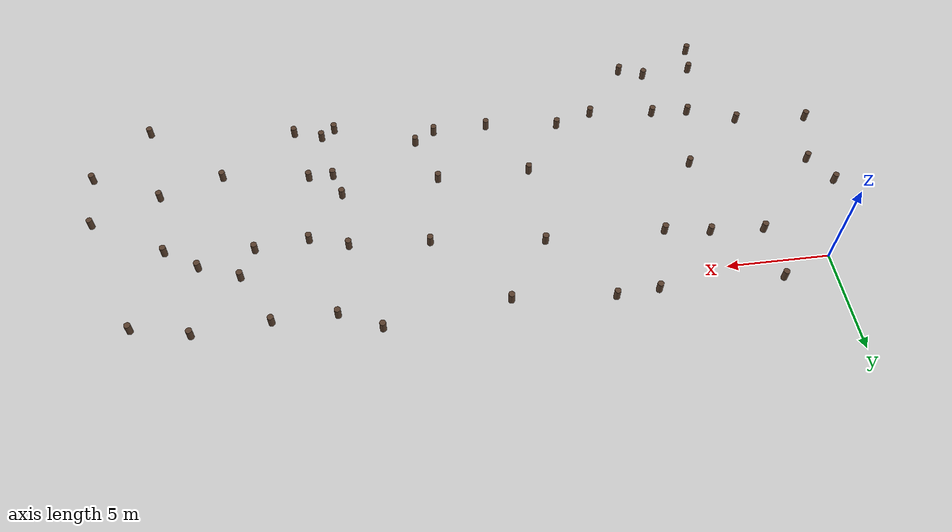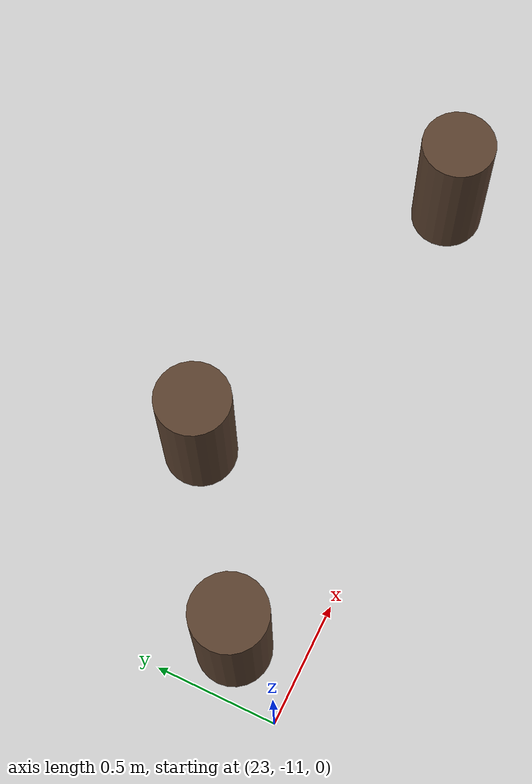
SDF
<?xml version="1.0"?>
<sdf version="1.6">
  <world name="orchard_world">
    <include>
      <uri>model://sun</uri>
    </include>

    <include>
      <uri>model://ground_plane</uri>
    </include>

    <!-- Trees: 49 includes of model://tree_trunk -->
    <include>
      <uri>model://tree_trunk</uri>
      <name>tree_0000</name>
      <pose>3.307497 -14.340033 0 0 0 0</pose>
    </include>
    <include>
      <uri>model://tree_trunk</uri>
      <name>tree_0001</name>
      <pose>7.416506 -13.215061 0 0 0 0</pose>
    </include>
    <include>
      <uri>model://tree_trunk</uri>
      <name>tree_0002</name>
      <pose>3.569192 -12.912752 0 0 0 0</pose>
    </include>
    <include>
      <uri>model://tree_trunk</uri>
      <name>tree_0003</name>
      <pose>6.164020 -12.736640 0 0 0 0</pose>
    </include>
    <include>
      <uri>model://tree_trunk</uri>
      <name>tree_0004</name>
      <pose>32.761314 -11.572879 0 0 0 0</pose>
    </include>
    <include>
      <uri>model://tree_trunk</uri>
      <name>tree_0005</name>
      <pose>23.194054 -10.733418 0 0 0 0</pose>
    </include>
    <include>
      <uri>model://tree_trunk</uri>
      <name>tree_0006</name>
      <pose>25.280037 -10.721928 0 0 0 0</pose>
    </include>
    <include>
      <uri>model://tree_trunk</uri>
      <name>tree_0007</name>
      <pose>9.609021 -10.306000 0 0 0 0</pose>
    </include>
    <include>
      <uri>model://tree_trunk</uri>
      <name>tree_0008</name>
      <pose>23.859732 -10.253096 0 0 0 0</pose>
    </include>
    <include>
      <uri>model://tree_trunk</uri>
      <name>tree_0009</name>
      <pose>15.241858 -10.082329 0 0 0 0</pose>
    </include>
    <include>
      <uri>model://tree_trunk</uri>
      <name>tree_0010</name>
      <pose>18.015316 -9.988838 0 0 0 0</pose>
    </include>
    <include>
      <uri>model://tree_trunk</uri>
      <name>tree_0011</name>
      <pose>6.313122 -9.960390 0 0 0 0</pose>
    </include>
    <include>
      <uri>model://tree_trunk</uri>
      <name>tree_0012</name>
      <pose>4.424278 -9.834929 0 0 0 0</pose>
    </include>
    <include>
      <uri>model://tree_trunk</uri>
      <name>tree_0013</name>
      <pose>11.518867 -9.704505 0 0 0 0</pose>
    </include>
    <include>
      <uri>model://tree_trunk</uri>
      <name>tree_0014</name>
      <pose>19.033037 -9.368340 0 0 0 0</pose>
    </include>
    <include>
      <uri>model://tree_trunk</uri>
      <name>tree_0015</name>
      <pose>2.005642 -8.985166 0 0 0 0</pose>
    </include>
    <include>
      <uri>model://tree_trunk</uri>
      <name>tree_0016</name>
      <pose>35.423580 -8.764959 0 0 0 0</pose>
    </include>
    <include>
      <uri>model://tree_trunk</uri>
      <name>tree_0017</name>
      <pose>-1.692026 -8.703738 0 0 0 0</pose>
    </include>
    <include>
      <uri>model://tree_trunk</uri>
      <name>tree_0018</name>
      <pose>28.919109 -8.180766 0 0 0 0</pose>
    </include>
    <include>
      <uri>model://tree_trunk</uri>
      <name>tree_0019</name>
      <pose>24.585564 -7.663545 0 0 0 0</pose>
    </include>
    <include>
      <uri>model://tree_trunk</uri>
      <name>tree_0020</name>
      <pose>23.372393 -7.648589 0 0 0 0</pose>
    </include>
    <include>
      <uri>model://tree_trunk</uri>
      <name>tree_0021</name>
      <pose>31.989241 -7.239039 0 0 0 0</pose>
    </include>
    <include>
      <uri>model://tree_trunk</uri>
      <name>tree_0022</name>
      <pose>13.462031 -6.831235 0 0 0 0</pose>
    </include>
    <include>
      <uri>model://tree_trunk</uri>
      <name>tree_0023</name>
      <pose>18.098537 -6.820309 0 0 0 0</pose>
    </include>
    <include>
      <uri>model://tree_trunk</uri>
      <name>tree_0024</name>
      <pose>22.966911 -6.359400 0 0 0 0</pose>
    </include>
    <include>
      <uri>model://tree_trunk</uri>
      <name>tree_0025</name>
      <pose>5.214707 -6.300080 0 0 0 0</pose>
    </include>
    <include>
      <uri>model://tree_trunk</uri>
      <name>tree_0026</name>
      <pose>35.213043 -5.924139 0 0 0 0</pose>
    </include>
    <include>
      <uri>model://tree_trunk</uri>
      <name>tree_0027</name>
      <pose>-0.858114 -5.900395 0 0 0 0</pose>
    </include>
    <include>
      <uri>model://tree_trunk</uri>
      <name>tree_0028</name>
      <pose>-1.796048 -4.397140 0 0 0 0</pose>
    </include>
    <include>
      <uri>model://tree_trunk</uri>
      <name>tree_0029</name>
      <pose>31.571064 -3.858552 0 0 0 0</pose>
    </include>
    <include>
      <uri>model://tree_trunk</uri>
      <name>tree_0030</name>
      <pose>24.667372 -3.808560 0 0 0 0</pose>
    </include>
    <include>
      <uri>model://tree_trunk</uri>
      <name>tree_0031</name>
      <pose>27.267506 -3.528401 0 0 0 0</pose>
    </include>
    <include>
      <uri>model://tree_trunk</uri>
      <name>tree_0032</name>
      <pose>22.781551 -3.241239 0 0 0 0</pose>
    </include>
    <include>
      <uri>model://tree_trunk</uri>
      <name>tree_0033</name>
      <pose>18.866447 -2.999404 0 0 0 0</pose>
    </include>
    <include>
      <uri>model://tree_trunk</uri>
      <name>tree_0034</name>
      <pose>29.919643 -2.794443 0 0 0 0</pose>
    </include>
    <include>
      <uri>model://tree_trunk</uri>
      <name>tree_0035</name>
      <pose>13.338285 -2.418929 0 0 0 0</pose>
    </include>
    <include>
      <uri>model://tree_trunk</uri>
      <name>tree_0036</name>
      <pose>7.488230 -2.325885 0 0 0 0</pose>
    </include>
    <include>
      <uri>model://tree_trunk</uri>
      <name>tree_0037</name>
      <pose>27.916653 -2.029511 0 0 0 0</pose>
    </include>
    <include>
      <uri>model://tree_trunk</uri>
      <name>tree_0038</name>
      <pose>5.293514 -2.000978 0 0 0 0</pose>
    </include>
    <include>
      <uri>model://tree_trunk</uri>
      <name>tree_0039</name>
      <pose>2.649248 -1.864643 0 0 0 0</pose>
    </include>
    <include>
      <uri>model://tree_trunk</uri>
      <name>tree_0040</name>
      <pose>32.854218 0.249567 0 0 0 0</pose>
    </include>
    <include>
      <uri>model://tree_trunk</uri>
      <name>tree_0041</name>
      <pose>23.445456 0.531766 0 0 0 0</pose>
    </include>
    <include>
      <uri>model://tree_trunk</uri>
      <name>tree_0042</name>
      <pose>26.470081 0.572972 0 0 0 0</pose>
    </include>
    <include>
      <uri>model://tree_trunk</uri>
      <name>tree_0043</name>
      <pose>15.451537 0.657187 0 0 0 0</pose>
    </include>
    <include>
      <uri>model://tree_trunk</uri>
      <name>tree_0044</name>
      <pose>30.096615 0.845985 0 0 0 0</pose>
    </include>
    <include>
      <uri>model://tree_trunk</uri>
      <name>tree_0045</name>
      <pose>8.521265 0.904069 0 0 0 0</pose>
    </include>
    <include>
      <uri>model://tree_trunk</uri>
      <name>tree_0046</name>
      <pose>2.518836 0.935079 0 0 0 0</pose>
    </include>
    <include>
      <uri>model://tree_trunk</uri>
      <name>tree_0047</name>
      <pose>10.574377 1.045275 0 0 0 0</pose>
    </include>
    <include>
      <uri>model://tree_trunk</uri>
      <name>tree_0048</name>
      <pose>21.447033 1.470677 0 0 0 0</pose>
    </include>
  </world>
</sdf>

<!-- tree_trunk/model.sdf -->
<sdf version="1.6">
  <model name="tree_trunk">
    <static>true</static>
    <link name="link">
      <collision name="trunk_collision">
        <pose>0 0 0.30 0 0 0</pose>
        <geometry>
          <cylinder>
            <radius>0.15</radius>
            <length>0.60</length>
          </cylinder>
        </geometry>
      </collision>
      <visual name="trunk_visual">
        <pose>0 0 0.30 0 0 0</pose>
        <geometry>
          <cylinder>
            <radius>0.15</radius>
            <length>0.60</length>
          </cylinder>
        </geometry>
        <material>
          <ambient>0.25 0.18 0.12 1</ambient>
          <diffuse>0.35 0.25 0.18 1</diffuse>
        </material>
      </visual>
    </link>
  </model>
</sdf>
